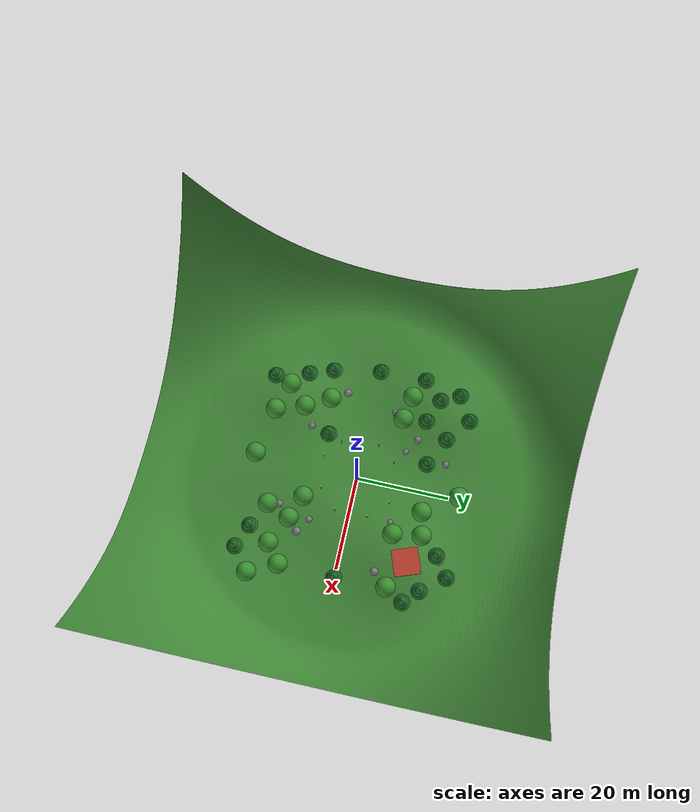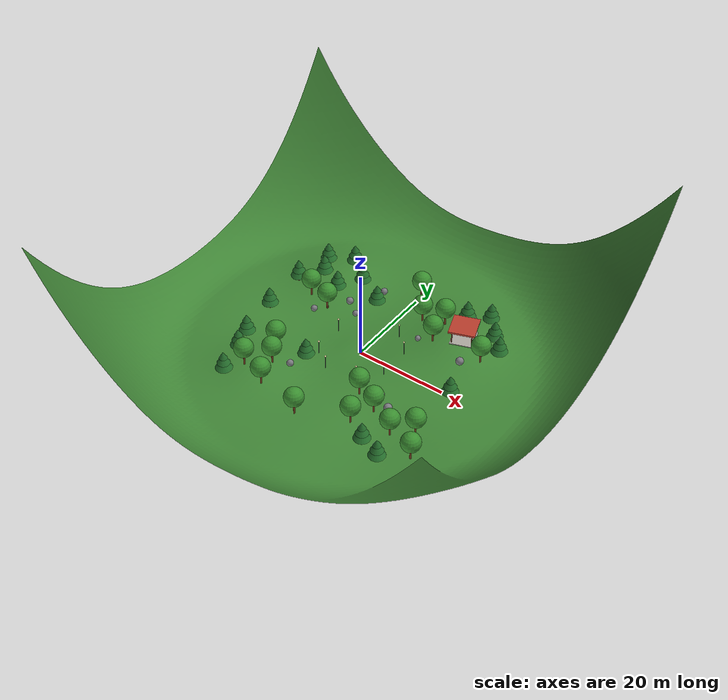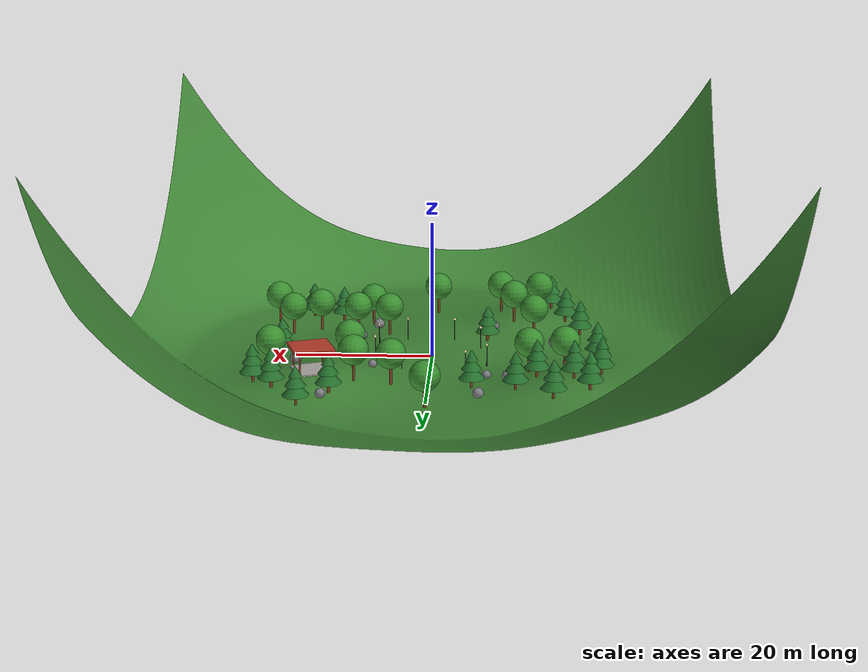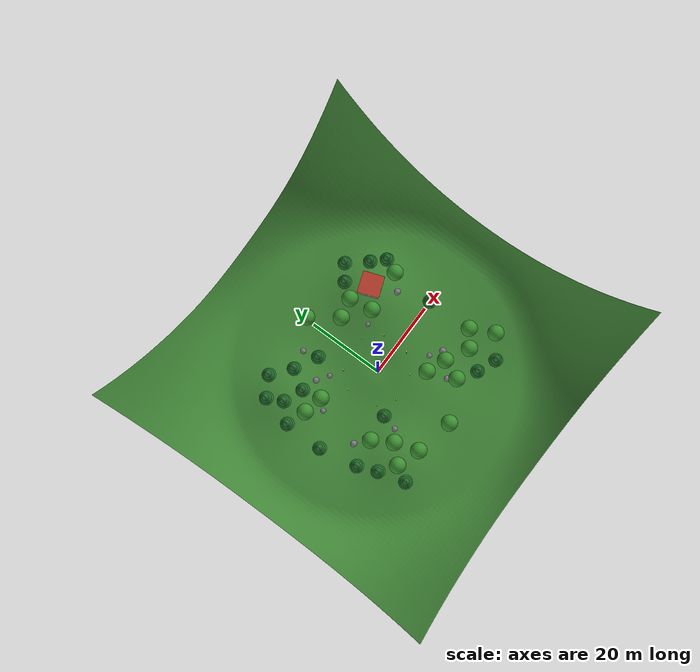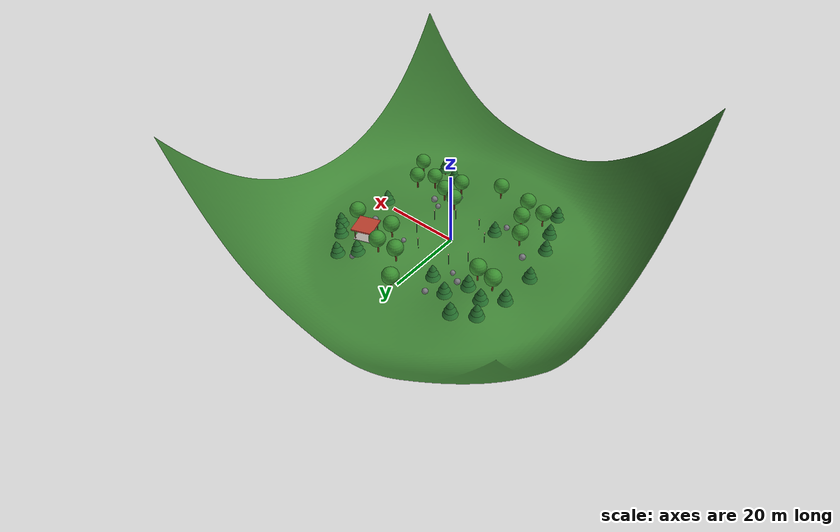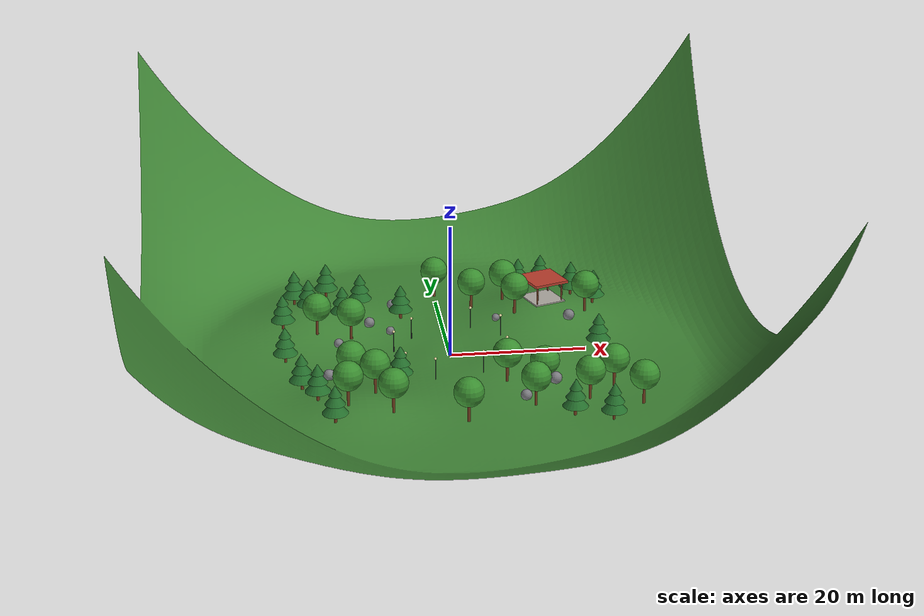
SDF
<?xml version="1.0"?>
<sdf version="1.8">
  <world name="default">

    <physics name="1ms" type="ignored">
      <max_step_size>0.001</max_step_size>
      <real_time_factor>1.0</real_time_factor>
    </physics>

    <!-- Essential Gazebo Harmonic Core Plugins -->
    <plugin
      filename="gz-sim-physics-system"
      name="gz::sim::systems::Physics">
    </plugin>
    <plugin
      filename="gz-sim-user-commands-system"
      name="gz::sim::systems::UserCommands">
    </plugin>
    <plugin
      filename="gz-sim-scene-broadcaster-system"
      name="gz::sim::systems::SceneBroadcaster">
    </plugin>
    <plugin
      filename="gz-sim-sensors-system"
      name="gz::sim::systems::Sensors">
      <render_engine>ogre2</render_engine>
    </plugin>
    <plugin
      filename="gz-sim-imu-system"
      name="gz::sim::systems::Imu">
    </plugin>

    <!-- Natural Outdoor Lighting and Sky -->
    <scene>
      <ambient>0.70 0.70 0.70 1.0</ambient>
      <background>0.65 0.80 0.95 1.0</background>
      <shadows>true</shadows>
      <grid>false</grid>
    </scene>

    <gui fullscreen='0'>
      <camera name='user_camera'>
        <pose>-10.0 -10.0 14.0 0 0.75 0.785</pose>
        <view_controller>orbit</view_controller>
        <projection_type>perspective</projection_type>
      </camera>
    </gui>

    <include>
      <uri>https://fuel.gazebosim.org/1.0/OpenRobotics/models/Sun</uri>
    </include>

    <!-- Deep Safety Ground Plane Underneath Park Terrain -->
    <model name="safety_ground_plane">
      <static>true</static>
      <pose>0 0 -10.0 0 0 0</pose>
      <link name="link">
        <collision name="collision">
          <geometry>
            <plane>
              <normal>0 0 1</normal>
              <size>300 300</size>
            </plane>
          </geometry>
        </collision>
      </link>
    </model>

    <!-- Realistic 3D Outdoor Park with Rolling Hills, Trees, Boulders & Pavilion -->
    <model name="outdoor_park">
      <static>true</static>
      <include>
        <uri>model://outdoor_park</uri>
      </include>
    </model>

  </world>
</sdf>
